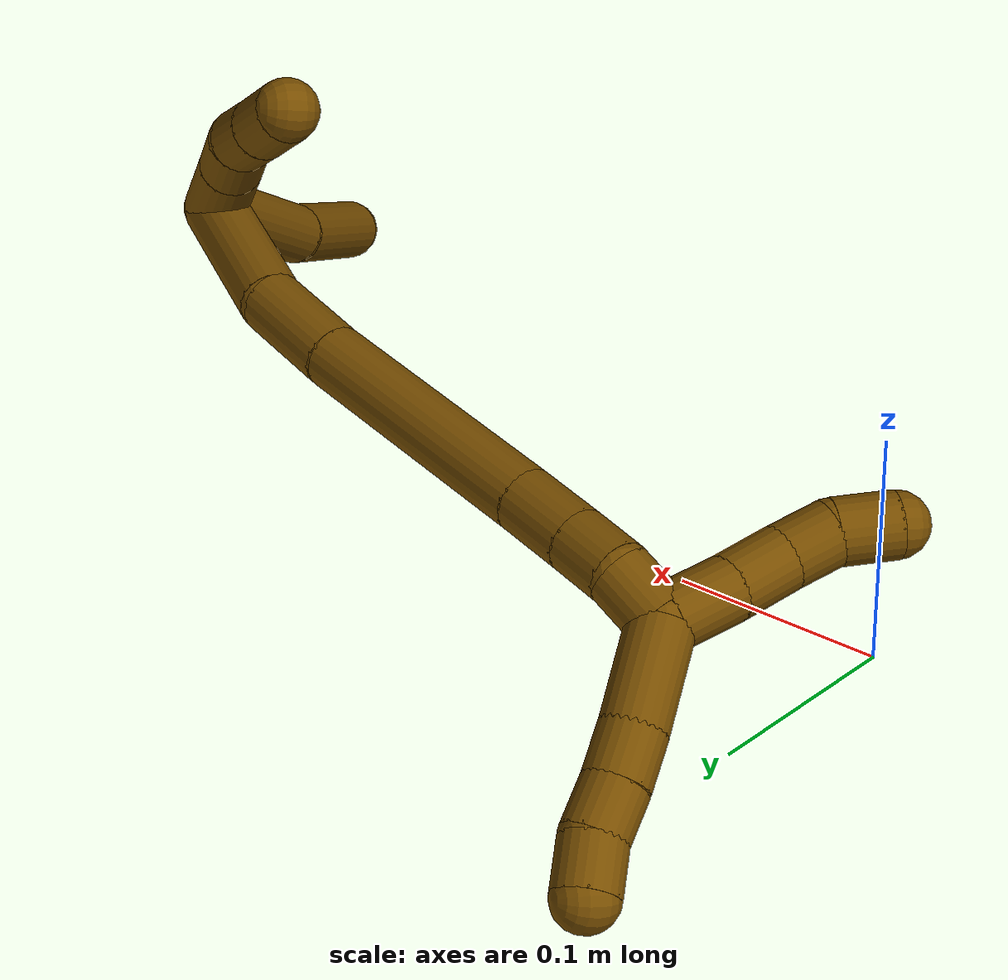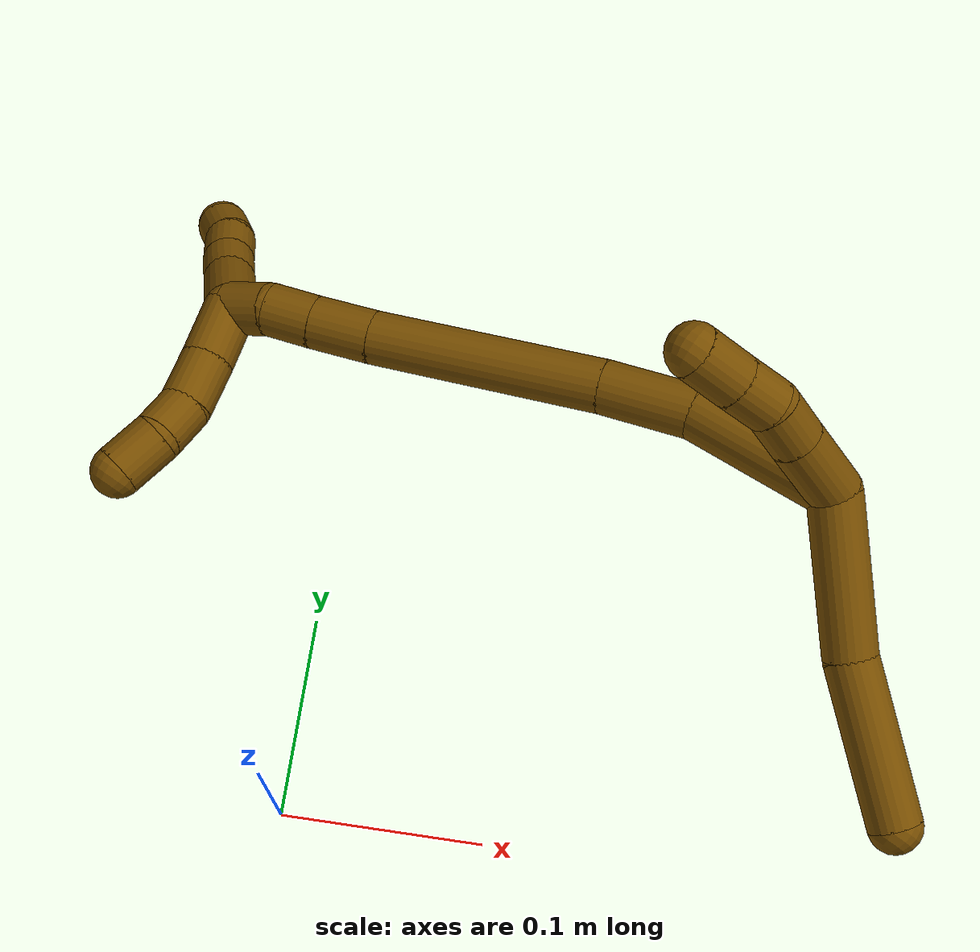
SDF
<sdf version="1.7">
 <world name="default">
  <model name="12">
   <static>0</static>
   <link name="12">
    <collision name="collision-cylinder-e_1_2_8">
     <pose>-0.012981 -0.022196 0.026417 0.698798 -0.359846 -0.132349</pose>
     <geometry><cylinder><radius>0.0125</radius><length>0.07373</length></cylinder></geometry>
     <surface>
      <friction><ode><mu>1.16</mu><mu2>1.16</mu2><slip1>0</slip1><slip2>0</slip2></ode></friction>
      <contact><ode><kp>1e+06</kp><kd>1</kd><max_vel>0</max_vel><min_depth>0.001</min_depth></ode></contact>
     </surface>
    </collision>
    <visual name="visual-cylinder-e_1_2_8">
     <pose>-0.012981 -0.022196 0.026417 0.698798 -0.359846 -0.132349</pose>
     <geometry><cylinder><radius>0.0125</radius><length>0.07373</length></cylinder></geometry>
     <material><ambient>0.466667 0.301961 0 1</ambient></material>
    </visual>
    <collision name="collision-cylinder-e_2_8_6">
     <pose>-0.034904 -0.072415 0.077104 0.857013 -0.236668 -0.108514</pose>
     <geometry><cylinder><radius>0.0125</radius><length>0.07627</length></cylinder></geometry>
     <surface>
      <friction><ode><mu>1.16</mu><mu2>1.16</mu2><slip1>0</slip1><slip2>0</slip2></ode></friction>
      <contact><ode><kp>1e+06</kp><kd>1</kd><max_vel>0</max_vel><min_depth>0.001</min_depth></ode></contact>
     </surface>
    </collision>
    <visual name="visual-cylinder-e_2_8_6">
     <pose>-0.034904 -0.072415 0.077104 0.857013 -0.236668 -0.108514</pose>
     <geometry><cylinder><radius>0.0125</radius><length>0.07627</length></cylinder></geometry>
     <material><ambient>0.466667 0.301961 0 1</ambient></material>
    </visual>
    <collision name="collision-cylinder-e_1_2_9">
     <pose>0.012876 0.011903 -0.002401 -1.76984 0.814703 -0.970364</pose>
     <geometry><cylinder><radius>0.0125</radius><length>0.035396</length></cylinder></geometry>
     <surface>
      <friction><ode><mu>1.16</mu><mu2>1.16</mu2><slip1>0</slip1><slip2>0</slip2></ode></friction>
      <contact><ode><kp>1e+06</kp><kd>1</kd><max_vel>0</max_vel><min_depth>0.001</min_depth></ode></contact>
     </surface>
    </collision>
    <visual name="visual-cylinder-e_1_2_9">
     <pose>0.012876 0.011903 -0.002401 -1.76984 0.814703 -0.970364</pose>
     <geometry><cylinder><radius>0.0125</radius><length>0.035396</length></cylinder></geometry>
     <material><ambient>0.466667 0.301961 0 1</ambient></material>
    </visual>
    <collision name="collision-cylinder-e_2_9_10">
     <pose>0.033409 0.030874 -0.006346 -1.78588 0.813746 -0.982855</pose>
     <geometry><cylinder><radius>0.0125</radius><length>0.021069</length></cylinder></geometry>
     <surface>
      <friction><ode><mu>1.16</mu><mu2>1.16</mu2><slip1>0</slip1><slip2>0</slip2></ode></friction>
      <contact><ode><kp>1e+06</kp><kd>1</kd><max_vel>0</max_vel><min_depth>0.001</min_depth></ode></contact>
     </surface>
    </collision>
    <visual name="visual-cylinder-e_2_9_10">
     <pose>0.033409 0.030874 -0.006346 -1.78588 0.813746 -0.982855</pose>
     <geometry><cylinder><radius>0.0125</radius><length>0.021069</length></cylinder></geometry>
     <material><ambient>0.466667 0.301961 0 1</ambient></material>
    </visual>
    <collision name="collision-cylinder-e_3_10_11">
     <pose>0.046666 0.046279 -0.007108 -1.47722 0.589429 -0.539333</pose>
     <geometry><cylinder><radius>0.0125</radius><length>0.020147</length></cylinder></geometry>
     <surface>
      <friction><ode><mu>1.16</mu><mu2>1.16</mu2><slip1>0</slip1><slip2>0</slip2></ode></friction>
      <contact><ode><kp>1e+06</kp><kd>1</kd><max_vel>0</max_vel><min_depth>0.001</min_depth></ode></contact>
     </surface>
    </collision>
    <visual name="visual-cylinder-e_3_10_11">
     <pose>0.046666 0.046279 -0.007108 -1.47722 0.589429 -0.539333</pose>
     <geometry><cylinder><radius>0.0125</radius><length>0.020147</length></cylinder></geometry>
     <material><ambient>0.466667 0.301961 0 1</ambient></material>
    </visual>
    <collision name="collision-cylinder-e_4_11_5">
     <pose>0.058925 0.0642 -0.005589 -1.49412 0.605887 -0.563539</pose>
     <geometry><cylinder><radius>0.0125</radius><length>0.023388</length></cylinder></geometry>
     <surface>
      <friction><ode><mu>1.16</mu><mu2>1.16</mu2><slip1>0</slip1><slip2>0</slip2></ode></friction>
      <contact><ode><kp>1e+06</kp><kd>1</kd><max_vel>0</max_vel><min_depth>0.001</min_depth></ode></contact>
     </surface>
    </collision>
    <visual name="visual-cylinder-e_4_11_5">
     <pose>0.058925 0.0642 -0.005589 -1.49412 0.605887 -0.563539</pose>
     <geometry><cylinder><radius>0.0125</radius><length>0.023388</length></cylinder></geometry>
     <material><ambient>0.466667 0.301961 0 1</ambient></material>
    </visual>
    <collision name="collision-cylinder-e_1_2_12">
     <pose>-0.006114 0.03509 0.000976 -1.54297 -0.172434 0.167724</pose>
     <geometry><cylinder><radius>0.0125</radius><length>0.071264</length></cylinder></geometry>
     <surface>
      <friction><ode><mu>1.16</mu><mu2>1.16</mu2><slip1>0</slip1><slip2>0</slip2></ode></friction>
      <contact><ode><kp>1e+06</kp><kd>1</kd><max_vel>0</max_vel><min_depth>0.001</min_depth></ode></contact>
     </surface>
    </collision>
    <visual name="visual-cylinder-e_1_2_12">
     <pose>-0.006114 0.03509 0.000976 -1.54297 -0.172434 0.167724</pose>
     <geometry><cylinder><radius>0.0125</radius><length>0.071264</length></cylinder></geometry>
     <material><ambient>0.466667 0.301961 0 1</ambient></material>
    </visual>
    <collision name="collision-cylinder-e_2_12_13">
     <pose>-0.014897 0.090789 0.007883 -1.29063 -0.123848 0.09329</pose>
     <geometry><cylinder><radius>0.0125</radius><length>0.043221</length></cylinder></geometry>
     <surface>
      <friction><ode><mu>1.16</mu><mu2>1.16</mu2><slip1>0</slip1><slip2>0</slip2></ode></friction>
      <contact><ode><kp>1e+06</kp><kd>1</kd><max_vel>0</max_vel><min_depth>0.001</min_depth></ode></contact>
     </surface>
    </collision>
    <visual name="visual-cylinder-e_2_12_13">
     <pose>-0.014897 0.090789 0.007883 -1.29063 -0.123848 0.09329</pose>
     <geometry><cylinder><radius>0.0125</radius><length>0.043221</length></cylinder></geometry>
     <material><ambient>0.466667 0.301961 0 1</ambient></material>
    </visual>
    <collision name="collision-cylinder-e_3_13_14">
     <pose>-0.023286 0.162844 0.032305 -1.22573 -0.104242 0.073336</pose>
     <geometry><cylinder><radius>0.0125</radius><length>0.109935</length></cylinder></geometry>
     <surface>
      <friction><ode><mu>1.16</mu><mu2>1.16</mu2><slip1>0</slip1><slip2>0</slip2></ode></friction>
      <contact><ode><kp>1e+06</kp><kd>1</kd><max_vel>0</max_vel><min_depth>0.001</min_depth></ode></contact>
     </surface>
    </collision>
    <visual name="visual-cylinder-e_3_13_14">
     <pose>-0.023286 0.162844 0.032305 -1.22573 -0.104242 0.073336</pose>
     <geometry><cylinder><radius>0.0125</radius><length>0.109935</length></cylinder></geometry>
     <material><ambient>0.466667 0.301961 0 1</ambient></material>
    </visual>
    <collision name="collision-cylinder-e_4_14_15">
     <pose>-0.030368 0.228166 0.055174 -1.26521 -0.093336 0.068448</pose>
     <geometry><cylinder><radius>0.0125</radius><length>0.029225</length></cylinder></geometry>
     <surface>
      <friction><ode><mu>1.16</mu><mu2>1.16</mu2><slip1>0</slip1><slip2>0</slip2></ode></friction>
      <contact><ode><kp>1e+06</kp><kd>1</kd><max_vel>0</max_vel><min_depth>0.001</min_depth></ode></contact>
     </surface>
    </collision>
    <visual name="visual-cylinder-e_4_14_15">
     <pose>-0.030368 0.228166 0.055174 -1.26521 -0.093336 0.068448</pose>
     <geometry><cylinder><radius>0.0125</radius><length>0.029225</length></cylinder></geometry>
     <material><ambient>0.466667 0.301961 0 1</ambient></material>
    </visual>
    <collision name="collision-cylinder-e_5_15_16">
     <pose>-0.032786 0.253182 0.062771 -1.28942 -0.090836 0.068319</pose>
     <geometry><cylinder><radius>0.0125</radius><length>0.023292</length></cylinder></geometry>
     <surface>
      <friction><ode><mu>1.16</mu><mu2>1.16</mu2><slip1>0</slip1><slip2>0</slip2></ode></friction>
      <contact><ode><kp>1e+06</kp><kd>1</kd><max_vel>0</max_vel><min_depth>0.001</min_depth></ode></contact>
     </surface>
    </collision>
    <visual name="visual-cylinder-e_5_15_16">
     <pose>-0.032786 0.253182 0.062771 -1.28942 -0.090836 0.068319</pose>
     <geometry><cylinder><radius>0.0125</radius><length>0.023292</length></cylinder></geometry>
     <material><ambient>0.466667 0.301961 0 1</ambient></material>
    </visual>
    <collision name="collision-cylinder-e_6_16_1">
     <pose>-0.038054 0.274054 0.070528 -1.13458 -0.373828 0.239842</pose>
     <geometry><cylinder><radius>0.0125</radius><length>0.023063</length></cylinder></geometry>
     <surface>
      <friction><ode><mu>1.16</mu><mu2>1.16</mu2><slip1>0</slip1><slip2>0</slip2></ode></friction>
      <contact><ode><kp>1e+06</kp><kd>1</kd><max_vel>0</max_vel><min_depth>0.001</min_depth></ode></contact>
     </surface>
    </collision>
    <visual name="visual-cylinder-e_6_16_1">
     <pose>-0.038054 0.274054 0.070528 -1.13458 -0.373828 0.239842</pose>
     <geometry><cylinder><radius>0.0125</radius><length>0.023063</length></cylinder></geometry>
     <material><ambient>0.466667 0.301961 0 1</ambient></material>
    </visual>
    <collision name="collision-cylinder-e_1_1_17">
     <pose>-0.038667 0.279526 0.088924 0.298051 0.243234 0.036696</pose>
     <geometry><cylinder><radius>0.0125</radius><length>0.02988</length></cylinder></geometry>
     <surface>
      <friction><ode><mu>1.16</mu><mu2>1.16</mu2><slip1>0</slip1><slip2>0</slip2></ode></friction>
      <contact><ode><kp>1e+06</kp><kd>1</kd><max_vel>0</max_vel><min_depth>0.001</min_depth></ode></contact>
     </surface>
    </collision>
    <visual name="visual-cylinder-e_1_1_17">
     <pose>-0.038667 0.279526 0.088924 0.298051 0.243234 0.036696</pose>
     <geometry><cylinder><radius>0.0125</radius><length>0.02988</length></cylinder></geometry>
     <material><ambient>0.466667 0.301961 0 1</ambient></material>
    </visual>
    <collision name="collision-cylinder-e_2_17_18">
     <pose>-0.031032 0.271789 0.114561 0.287277 0.317631 0.046322</pose>
     <geometry><cylinder><radius>0.0125</radius><length>0.025851</length></cylinder></geometry>
     <surface>
      <friction><ode><mu>1.16</mu><mu2>1.16</mu2><slip1>0</slip1><slip2>0</slip2></ode></friction>
      <contact><ode><kp>1e+06</kp><kd>1</kd><max_vel>0</max_vel><min_depth>0.001</min_depth></ode></contact>
     </surface>
    </collision>
    <visual name="visual-cylinder-e_2_17_18">
     <pose>-0.031032 0.271789 0.114561 0.287277 0.317631 0.046322</pose>
     <geometry><cylinder><radius>0.0125</radius><length>0.025851</length></cylinder></geometry>
     <material><ambient>0.466667 0.301961 0 1</ambient></material>
    </visual>
    <collision name="collision-cylinder-e_3_18_19">
     <pose>-0.02233 0.267882 0.13556 0.046361 0.46779 0.011048</pose>
     <geometry><cylinder><radius>0.0125</radius><length>0.02069</length></cylinder></geometry>
     <surface>
      <friction><ode><mu>1.16</mu><mu2>1.16</mu2><slip1>0</slip1><slip2>0</slip2></ode></friction>
      <contact><ode><kp>1e+06</kp><kd>1</kd><max_vel>0</max_vel><min_depth>0.001</min_depth></ode></contact>
     </surface>
    </collision>
    <visual name="visual-cylinder-e_3_18_19">
     <pose>-0.02233 0.267882 0.13556 0.046361 0.46779 0.011048</pose>
     <geometry><cylinder><radius>0.0125</radius><length>0.02069</length></cylinder></geometry>
     <material><ambient>0.466667 0.301961 0 1</ambient></material>
    </visual>
    <collision name="collision-cylinder-e_4_19_4">
     <pose>-0.015329 0.269552 0.156148 -0.182606 0.199484 -0.018325</pose>
     <geometry><cylinder><radius>0.0125</radius><length>0.023579</length></cylinder></geometry>
     <surface>
      <friction><ode><mu>1.16</mu><mu2>1.16</mu2><slip1>0</slip1><slip2>0</slip2></ode></friction>
      <contact><ode><kp>1e+06</kp><kd>1</kd><max_vel>0</max_vel><min_depth>0.001</min_depth></ode></contact>
     </surface>
    </collision>
    <visual name="visual-cylinder-e_4_19_4">
     <pose>-0.015329 0.269552 0.156148 -0.182606 0.199484 -0.018325</pose>
     <geometry><cylinder><radius>0.0125</radius><length>0.023579</length></cylinder></geometry>
     <material><ambient>0.466667 0.301961 0 1</ambient></material>
    </visual>
    <collision name="collision-cylinder-e_1_1_20">
     <pose>-0.057293 0.293736 0.068088 -2.18213 -0.890774 1.48486</pose>
     <geometry><cylinder><radius>0.0125</radius><length>0.038655</length></cylinder></geometry>
     <surface>
      <friction><ode><mu>1.16</mu><mu2>1.16</mu2><slip1>0</slip1><slip2>0</slip2></ode></friction>
      <contact><ode><kp>1e+06</kp><kd>1</kd><max_vel>0</max_vel><min_depth>0.001</min_depth></ode></contact>
     </surface>
    </collision>
    <visual name="visual-cylinder-e_1_1_20">
     <pose>-0.057293 0.293736 0.068088 -2.18213 -0.890774 1.48486</pose>
     <geometry><cylinder><radius>0.0125</radius><length>0.038655</length></cylinder></geometry>
     <material><ambient>0.466667 0.301961 0 1</ambient></material>
    </visual>
    <collision name="collision-cylinder-e_2_20_21">
     <pose>-0.079625 0.309542 0.056462 -2.24211 -0.773725 1.40191</pose>
     <geometry><cylinder><radius>0.0125</radius><length>0.020902</length></cylinder></geometry>
     <surface>
      <friction><ode><mu>1.16</mu><mu2>1.16</mu2><slip1>0</slip1><slip2>0</slip2></ode></friction>
      <contact><ode><kp>1e+06</kp><kd>1</kd><max_vel>0</max_vel><min_depth>0.001</min_depth></ode></contact>
     </surface>
    </collision>
    <visual name="visual-cylinder-e_2_20_21">
     <pose>-0.079625 0.309542 0.056462 -2.24211 -0.773725 1.40191</pose>
     <geometry><cylinder><radius>0.0125</radius><length>0.020902</length></cylinder></geometry>
     <material><ambient>0.466667 0.301961 0 1</ambient></material>
    </visual>
    <collision name="collision-cylinder-e_3_21_22">
     <pose>-0.093769 0.320654 0.046735 -2.33868 -0.752324 1.49873</pose>
     <geometry><cylinder><radius>0.0125</radius><length>0.020022</length></cylinder></geometry>
     <surface>
      <friction><ode><mu>1.16</mu><mu2>1.16</mu2><slip1>0</slip1><slip2>0</slip2></ode></friction>
      <contact><ode><kp>1e+06</kp><kd>1</kd><max_vel>0</max_vel><min_depth>0.001</min_depth></ode></contact>
     </surface>
    </collision>
    <visual name="visual-cylinder-e_3_21_22">
     <pose>-0.093769 0.320654 0.046735 -2.33868 -0.752324 1.49873</pose>
     <geometry><cylinder><radius>0.0125</radius><length>0.020022</length></cylinder></geometry>
     <material><ambient>0.466667 0.301961 0 1</ambient></material>
    </visual>
    <collision name="collision-cylinder-e_4_22_3">
     <pose>-0.107714 0.332573 0.038592 -2.00224 -0.769505 1.12753</pose>
     <geometry><cylinder><radius>0.0125</radius><length>0.020421</length></cylinder></geometry>
     <surface>
      <friction><ode><mu>1.16</mu><mu2>1.16</mu2><slip1>0</slip1><slip2>0</slip2></ode></friction>
      <contact><ode><kp>1e+06</kp><kd>1</kd><max_vel>0</max_vel><min_depth>0.001</min_depth></ode></contact>
     </surface>
    </collision>
    <visual name="visual-cylinder-e_4_22_3">
     <pose>-0.107714 0.332573 0.038592 -2.00224 -0.769505 1.12753</pose>
     <geometry><cylinder><radius>0.0125</radius><length>0.020421</length></cylinder></geometry>
     <material><ambient>0.466667 0.301961 0 1</ambient></material>
    </visual>
    <collision name="collision-sphere-3">
     <pose>-0.114818 0.339235 0.035525 0 -0 0</pose>
     <geometry><sphere><radius>0.0125</radius></sphere></geometry>
     <surface>
      <friction><ode><mu>1.16</mu><mu2>1.16</mu2><slip1>0</slip1><slip2>0</slip2></ode></friction>
      <contact><ode><kp>1e+06</kp><kd>1</kd><max_vel>0</max_vel><min_depth>0.001</min_depth></ode></contact>
     </surface>
    </collision>
    <visual name="visual-sphere-3">
     <pose>-0.114818 0.339235 0.035525 0 -0 0</pose>
     <geometry><sphere><radius>0.0125</radius></sphere></geometry>
     <material><ambient>0.466667 0.301961 0 1</ambient></material>
    </visual>
    <collision name="collision-sphere-22">
     <pose>-0.100609 0.325912 0.041658 0 -0 0</pose>
     <geometry><sphere><radius>0.0125</radius></sphere></geometry>
     <surface>
      <friction><ode><mu>1.16</mu><mu2>1.16</mu2><slip1>0</slip1><slip2>0</slip2></ode></friction>
      <contact><ode><kp>1e+06</kp><kd>1</kd><max_vel>0</max_vel><min_depth>0.001</min_depth></ode></contact>
     </surface>
    </collision>
    <visual name="visual-sphere-22">
     <pose>-0.100609 0.325912 0.041658 0 -0 0</pose>
     <geometry><sphere><radius>0.0125</radius></sphere></geometry>
     <material><ambient>0.466667 0.301961 0 1</ambient></material>
    </visual>
    <collision name="collision-sphere-21">
     <pose>-0.086928 0.315396 0.051812 0 -0 0</pose>
     <geometry><sphere><radius>0.0125</radius></sphere></geometry>
     <surface>
      <friction><ode><mu>1.16</mu><mu2>1.16</mu2><slip1>0</slip1><slip2>0</slip2></ode></friction>
      <contact><ode><kp>1e+06</kp><kd>1</kd><max_vel>0</max_vel><min_depth>0.001</min_depth></ode></contact>
     </surface>
    </collision>
    <visual name="visual-sphere-21">
     <pose>-0.086928 0.315396 0.051812 0 -0 0</pose>
     <geometry><sphere><radius>0.0125</radius></sphere></geometry>
     <material><ambient>0.466667 0.301961 0 1</ambient></material>
    </visual>
    <collision name="collision-sphere-20">
     <pose>-0.072321 0.303688 0.061112 0 -0 0</pose>
     <geometry><sphere><radius>0.0125</radius></sphere></geometry>
     <surface>
      <friction><ode><mu>1.16</mu><mu2>1.16</mu2><slip1>0</slip1><slip2>0</slip2></ode></friction>
      <contact><ode><kp>1e+06</kp><kd>1</kd><max_vel>0</max_vel><min_depth>0.001</min_depth></ode></contact>
     </surface>
    </collision>
    <visual name="visual-sphere-20">
     <pose>-0.072321 0.303688 0.061112 0 -0 0</pose>
     <geometry><sphere><radius>0.0125</radius></sphere></geometry>
     <material><ambient>0.466667 0.301961 0 1</ambient></material>
    </visual>
    <collision name="collision-sphere-4">
     <pose>-0.012993 0.271651 0.167511 0 -0 0</pose>
     <geometry><sphere><radius>0.0125</radius></sphere></geometry>
     <surface>
      <friction><ode><mu>1.16</mu><mu2>1.16</mu2><slip1>0</slip1><slip2>0</slip2></ode></friction>
      <contact><ode><kp>1e+06</kp><kd>1</kd><max_vel>0</max_vel><min_depth>0.001</min_depth></ode></contact>
     </surface>
    </collision>
    <visual name="visual-sphere-4">
     <pose>-0.012993 0.271651 0.167511 0 -0 0</pose>
     <geometry><sphere><radius>0.0125</radius></sphere></geometry>
     <material><ambient>0.466667 0.301961 0 1</ambient></material>
    </visual>
    <collision name="collision-sphere-11">
     <pose>0.052265 0.054616 -0.006325 0 -0 0</pose>
     <geometry><sphere><radius>0.0125</radius></sphere></geometry>
     <surface>
      <friction><ode><mu>1.16</mu><mu2>1.16</mu2><slip1>0</slip1><slip2>0</slip2></ode></friction>
      <contact><ode><kp>1e+06</kp><kd>1</kd><max_vel>0</max_vel><min_depth>0.001</min_depth></ode></contact>
     </surface>
    </collision>
    <visual name="visual-sphere-11">
     <pose>0.052265 0.054616 -0.006325 0 -0 0</pose>
     <geometry><sphere><radius>0.0125</radius></sphere></geometry>
     <material><ambient>0.466667 0.301961 0 1</ambient></material>
    </visual>
    <collision name="collision-sphere-10">
     <pose>0.041066 0.037942 -0.00789 0 -0 0</pose>
     <geometry><sphere><radius>0.0125</radius></sphere></geometry>
     <surface>
      <friction><ode><mu>1.16</mu><mu2>1.16</mu2><slip1>0</slip1><slip2>0</slip2></ode></friction>
      <contact><ode><kp>1e+06</kp><kd>1</kd><max_vel>0</max_vel><min_depth>0.001</min_depth></ode></contact>
     </surface>
    </collision>
    <visual name="visual-sphere-10">
     <pose>0.041066 0.037942 -0.00789 0 -0 0</pose>
     <geometry><sphere><radius>0.0125</radius></sphere></geometry>
     <material><ambient>0.466667 0.301961 0 1</ambient></material>
    </visual>
    <collision name="collision-sphere-6">
     <pose>-0.043845 -0.100437 0.101375 0 -0 0</pose>
     <geometry><sphere><radius>0.0125</radius></sphere></geometry>
     <surface>
      <friction><ode><mu>1.16</mu><mu2>1.16</mu2><slip1>0</slip1><slip2>0</slip2></ode></friction>
      <contact><ode><kp>1e+06</kp><kd>1</kd><max_vel>0</max_vel><min_depth>0.001</min_depth></ode></contact>
     </surface>
    </collision>
    <visual name="visual-sphere-6">
     <pose>-0.043845 -0.100437 0.101375 0 -0 0</pose>
     <geometry><sphere><radius>0.0125</radius></sphere></geometry>
     <material><ambient>0.466667 0.301961 0 1</ambient></material>
    </visual>
    <collision name="collision-sphere-9">
     <pose>0.025752 0.023805 -0.004802 0 -0 0</pose>
     <geometry><sphere><radius>0.0125</radius></sphere></geometry>
     <surface>
      <friction><ode><mu>1.16</mu><mu2>1.16</mu2><slip1>0</slip1><slip2>0</slip2></ode></friction>
      <contact><ode><kp>1e+06</kp><kd>1</kd><max_vel>0</max_vel><min_depth>0.001</min_depth></ode></contact>
     </surface>
    </collision>
    <visual name="visual-sphere-9">
     <pose>0.025752 0.023805 -0.004802 0 -0 0</pose>
     <geometry><sphere><radius>0.0125</radius></sphere></geometry>
     <material><ambient>0.466667 0.301961 0 1</ambient></material>
    </visual>
    <collision name="collision-sphere-2">
     <geometry><sphere><radius>0.0125</radius></sphere></geometry>
     <surface>
      <friction><ode><mu>1.16</mu><mu2>1.16</mu2><slip1>0</slip1><slip2>0</slip2></ode></friction>
      <contact><ode><kp>1e+06</kp><kd>1</kd><max_vel>0</max_vel><min_depth>0.001</min_depth></ode></contact>
     </surface>
    </collision>
    <visual name="visual-sphere-2">
     <geometry><sphere><radius>0.0125</radius></sphere></geometry>
     <material><ambient>0.466667 0.301961 0 1</ambient></material>
    </visual>
    <collision name="collision-sphere-19">
     <pose>-0.017665 0.267454 0.144784 0 -0 0</pose>
     <geometry><sphere><radius>0.0125</radius></sphere></geometry>
     <surface>
      <friction><ode><mu>1.16</mu><mu2>1.16</mu2><slip1>0</slip1><slip2>0</slip2></ode></friction>
      <contact><ode><kp>1e+06</kp><kd>1</kd><max_vel>0</max_vel><min_depth>0.001</min_depth></ode></contact>
     </surface>
    </collision>
    <visual name="visual-sphere-19">
     <pose>-0.017665 0.267454 0.144784 0 -0 0</pose>
     <geometry><sphere><radius>0.0125</radius></sphere></geometry>
     <material><ambient>0.466667 0.301961 0 1</ambient></material>
    </visual>
    <collision name="collision-sphere-8">
     <pose>-0.025962 -0.044392 0.052833 0 -0 0</pose>
     <geometry><sphere><radius>0.0125</radius></sphere></geometry>
     <surface>
      <friction><ode><mu>1.16</mu><mu2>1.16</mu2><slip1>0</slip1><slip2>0</slip2></ode></friction>
      <contact><ode><kp>1e+06</kp><kd>1</kd><max_vel>0</max_vel><min_depth>0.001</min_depth></ode></contact>
     </surface>
    </collision>
    <visual name="visual-sphere-8">
     <pose>-0.025962 -0.044392 0.052833 0 -0 0</pose>
     <geometry><sphere><radius>0.0125</radius></sphere></geometry>
     <material><ambient>0.466667 0.301961 0 1</ambient></material>
    </visual>
    <collision name="collision-sphere-5">
     <pose>0.065584 0.073784 -0.004853 0 -0 0</pose>
     <geometry><sphere><radius>0.0125</radius></sphere></geometry>
     <surface>
      <friction><ode><mu>1.16</mu><mu2>1.16</mu2><slip1>0</slip1><slip2>0</slip2></ode></friction>
      <contact><ode><kp>1e+06</kp><kd>1</kd><max_vel>0</max_vel><min_depth>0.001</min_depth></ode></contact>
     </surface>
    </collision>
    <visual name="visual-sphere-5">
     <pose>0.065584 0.073784 -0.004853 0 -0 0</pose>
     <geometry><sphere><radius>0.0125</radius></sphere></geometry>
     <material><ambient>0.466667 0.301961 0 1</ambient></material>
    </visual>
    <collision name="collision-sphere-12">
     <pose>-0.012228 0.07018 0.001953 0 -0 0</pose>
     <geometry><sphere><radius>0.0125</radius></sphere></geometry>
     <surface>
      <friction><ode><mu>1.16</mu><mu2>1.16</mu2><slip1>0</slip1><slip2>0</slip2></ode></friction>
      <contact><ode><kp>1e+06</kp><kd>1</kd><max_vel>0</max_vel><min_depth>0.001</min_depth></ode></contact>
     </surface>
    </collision>
    <visual name="visual-sphere-12">
     <pose>-0.012228 0.07018 0.001953 0 -0 0</pose>
     <geometry><sphere><radius>0.0125</radius></sphere></geometry>
     <material><ambient>0.466667 0.301961 0 1</ambient></material>
    </visual>
    <collision name="collision-sphere-13">
     <pose>-0.017567 0.111398 0.013813 0 -0 0</pose>
     <geometry><sphere><radius>0.0125</radius></sphere></geometry>
     <surface>
      <friction><ode><mu>1.16</mu><mu2>1.16</mu2><slip1>0</slip1><slip2>0</slip2></ode></friction>
      <contact><ode><kp>1e+06</kp><kd>1</kd><max_vel>0</max_vel><min_depth>0.001</min_depth></ode></contact>
     </surface>
    </collision>
    <visual name="visual-sphere-13">
     <pose>-0.017567 0.111398 0.013813 0 -0 0</pose>
     <geometry><sphere><radius>0.0125</radius></sphere></geometry>
     <material><ambient>0.466667 0.301961 0 1</ambient></material>
    </visual>
    <collision name="collision-sphere-14">
     <pose>-0.029006 0.214291 0.050797 0 -0 0</pose>
     <geometry><sphere><radius>0.0125</radius></sphere></geometry>
     <surface>
      <friction><ode><mu>1.16</mu><mu2>1.16</mu2><slip1>0</slip1><slip2>0</slip2></ode></friction>
      <contact><ode><kp>1e+06</kp><kd>1</kd><max_vel>0</max_vel><min_depth>0.001</min_depth></ode></contact>
     </surface>
    </collision>
    <visual name="visual-sphere-14">
     <pose>-0.029006 0.214291 0.050797 0 -0 0</pose>
     <geometry><sphere><radius>0.0125</radius></sphere></geometry>
     <material><ambient>0.466667 0.301961 0 1</ambient></material>
    </visual>
    <collision name="collision-sphere-15">
     <pose>-0.03173 0.242041 0.059551 0 -0 0</pose>
     <geometry><sphere><radius>0.0125</radius></sphere></geometry>
     <surface>
      <friction><ode><mu>1.16</mu><mu2>1.16</mu2><slip1>0</slip1><slip2>0</slip2></ode></friction>
      <contact><ode><kp>1e+06</kp><kd>1</kd><max_vel>0</max_vel><min_depth>0.001</min_depth></ode></contact>
     </surface>
    </collision>
    <visual name="visual-sphere-15">
     <pose>-0.03173 0.242041 0.059551 0 -0 0</pose>
     <geometry><sphere><radius>0.0125</radius></sphere></geometry>
     <material><ambient>0.466667 0.301961 0 1</ambient></material>
    </visual>
    <collision name="collision-sphere-16">
     <pose>-0.033842 0.264324 0.065992 0 -0 0</pose>
     <geometry><sphere><radius>0.0125</radius></sphere></geometry>
     <surface>
      <friction><ode><mu>1.16</mu><mu2>1.16</mu2><slip1>0</slip1><slip2>0</slip2></ode></friction>
      <contact><ode><kp>1e+06</kp><kd>1</kd><max_vel>0</max_vel><min_depth>0.001</min_depth></ode></contact>
     </surface>
    </collision>
    <visual name="visual-sphere-16">
     <pose>-0.033842 0.264324 0.065992 0 -0 0</pose>
     <geometry><sphere><radius>0.0125</radius></sphere></geometry>
     <material><ambient>0.466667 0.301961 0 1</ambient></material>
    </visual>
    <collision name="collision-sphere-1">
     <pose>-0.042265 0.283784 0.075063 0 -0 0</pose>
     <geometry><sphere><radius>0.0125</radius></sphere></geometry>
     <surface>
      <friction><ode><mu>1.16</mu><mu2>1.16</mu2><slip1>0</slip1><slip2>0</slip2></ode></friction>
      <contact><ode><kp>1e+06</kp><kd>1</kd><max_vel>0</max_vel><min_depth>0.001</min_depth></ode></contact>
     </surface>
    </collision>
    <visual name="visual-sphere-1">
     <pose>-0.042265 0.283784 0.075063 0 -0 0</pose>
     <geometry><sphere><radius>0.0125</radius></sphere></geometry>
     <material><ambient>0.466667 0.301961 0 1</ambient></material>
    </visual>
    <collision name="collision-sphere-18">
     <pose>-0.026995 0.26831 0.126336 0 -0 0</pose>
     <geometry><sphere><radius>0.0125</radius></sphere></geometry>
     <surface>
      <friction><ode><mu>1.16</mu><mu2>1.16</mu2><slip1>0</slip1><slip2>0</slip2></ode></friction>
      <contact><ode><kp>1e+06</kp><kd>1</kd><max_vel>0</max_vel><min_depth>0.001</min_depth></ode></contact>
     </surface>
    </collision>
    <visual name="visual-sphere-18">
     <pose>-0.026995 0.26831 0.126336 0 -0 0</pose>
     <geometry><sphere><radius>0.0125</radius></sphere></geometry>
     <material><ambient>0.466667 0.301961 0 1</ambient></material>
    </visual>
    <collision name="collision-sphere-17">
     <pose>-0.035068 0.275268 0.102785 0 -0 0</pose>
     <geometry><sphere><radius>0.0125</radius></sphere></geometry>
     <surface>
      <friction><ode><mu>1.16</mu><mu2>1.16</mu2><slip1>0</slip1><slip2>0</slip2></ode></friction>
      <contact><ode><kp>1e+06</kp><kd>1</kd><max_vel>0</max_vel><min_depth>0.001</min_depth></ode></contact>
     </surface>
    </collision>
    <visual name="visual-sphere-17">
     <pose>-0.035068 0.275268 0.102785 0 -0 0</pose>
     <geometry><sphere><radius>0.0125</radius></sphere></geometry>
     <material><ambient>0.466667 0.301961 0 1</ambient></material>
    </visual>
    <inertial>
     <pose>-0.022729 0.130495 0.044853 0 -0 0</pose>
     <mass>0.75</mass>
     <inertia>
      <ixx>0.000252</ixx>
      <ixy>0</ixy>
      <ixz>0</ixz>
      <iyy>0.000153</iyy>
      <iyz>0</iyz>
      <izz>-5.7e-05</izz>
     </inertia>
    </inertial>
   </link>
   <pose>0.232919 0.141298 0.182354 3.1394 -1.38512 -2.0378</pose>
  </model>
 </world>
</sdf>
